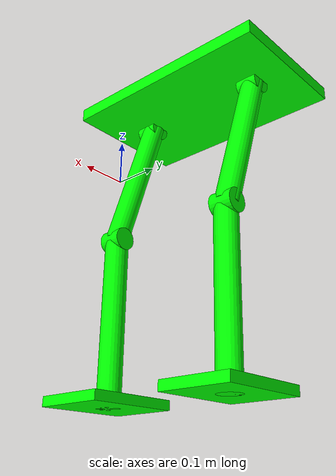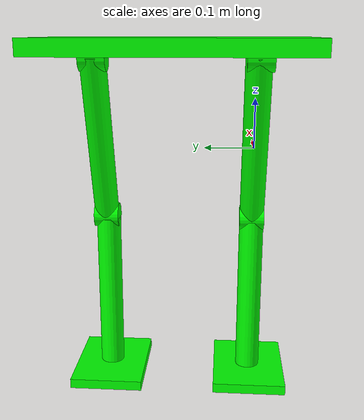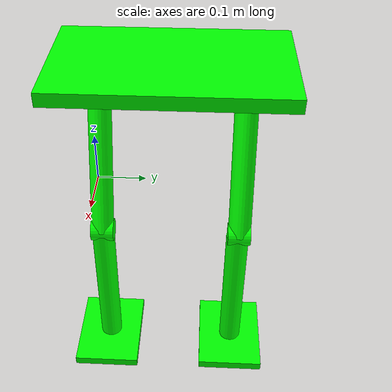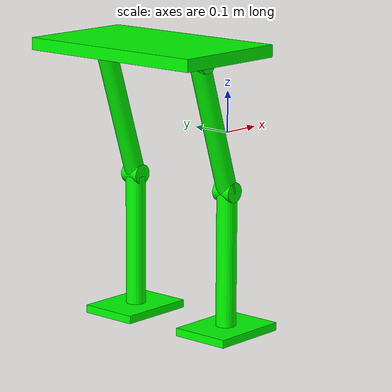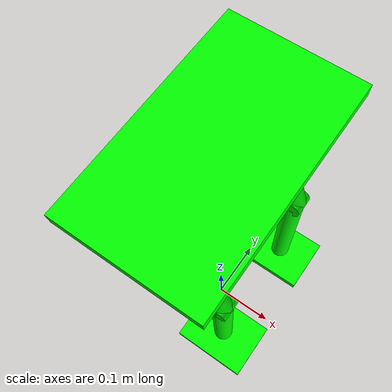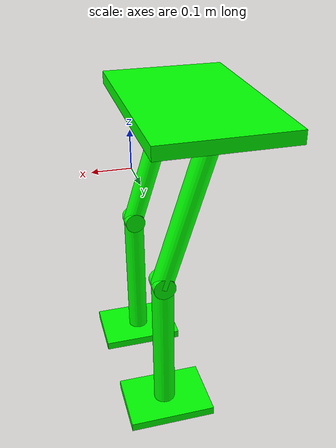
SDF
<?xml version='1.0'?>
<sdf version='1.6'>
  <model name='HumanoidRobot'>
    <link name='link'>
      <pose frame=''>0.00063 -0.001818 -0.49 0 -0 0</pose>
      <inertial>
        <mass>1</mass>
        <inertia>
          <ixx>0.166667</ixx>
          <ixy>0</ixy>
          <ixz>0</ixz>
          <iyy>0.166667</iyy>
          <iyz>0</iyz>
          <izz>0.166667</izz>
        </inertia>
        <pose frame=''>0 0 0 0 -0 0</pose>
      </inertial>
      <self_collide>0</self_collide>
      <kinematic>0</kinematic>
      <gravity>1</gravity>
      <visual name='visual'>
        <geometry>
          <box>
            <size>0.2 0.15 0.02</size>
          </box>
        </geometry>
        <material>
          <script>
            <name>Gazebo/Grey</name>
            <uri>file://media/materials/scripts/gazebo.material</uri>
          </script>
          <shader type='pixel'>
            <normal_map>__default__</normal_map>
          </shader>
          <ambient>0 1 0 0</ambient>
          <diffuse>0.7 0.7 0.7 1</diffuse>
          <specular>0.01 0.01 0.01 1</specular>
          <emissive>0 0 0 1</emissive>
        </material>
        <pose frame=''>0 0 0 0 -0 0</pose>
        <transparency>0</transparency>
        <cast_shadows>1</cast_shadows>
      </visual>
      <collision name='collision'>
        <laser_retro>0</laser_retro>
        <max_contacts>10</max_contacts>
        <pose frame=''>0 0 0 0 -0 0</pose>
        <geometry>
          <box>
            <size>0.2 0.15 0.02</size>
          </box>
        </geometry>
        <surface>
          <friction>
            <ode>
              <mu>1</mu>
              <mu2>1</mu2>
              <fdir1>0 0 0</fdir1>
              <slip1>0</slip1>
              <slip2>0</slip2>
            </ode>
            <torsional>
              <coefficient>1</coefficient>
              <patch_radius>0</patch_radius>
              <surface_radius>0</surface_radius>
              <use_patch_radius>1</use_patch_radius>
              <ode>
                <slip>0</slip>
              </ode>
            </torsional>
          </friction>
          <bounce>
            <restitution_coefficient>0</restitution_coefficient>
            <threshold>1e+06</threshold>
          </bounce>
          <contact>
            <collide_without_contact>0</collide_without_contact>
            <collide_without_contact_bitmask>1</collide_without_contact_bitmask>
            <collide_bitmask>1</collide_bitmask>
            <ode>
              <soft_cfm>0</soft_cfm>
              <soft_erp>0.2</soft_erp>
              <kp>1e+13</kp>
              <kd>1</kd>
              <max_vel>0.01</max_vel>
              <min_depth>0</min_depth>
            </ode>
            <bullet>
              <split_impulse>1</split_impulse>
              <split_impulse_penetration_threshold>-0.01</split_impulse_penetration_threshold>
              <soft_cfm>0</soft_cfm>
              <soft_erp>0.2</soft_erp>
              <kp>1e+13</kp>
              <kd>1</kd>
            </bullet>
          </contact>
        </surface>
      </collision>
    </link>
    <link name='link_0'>
      <pose frame=''>0 0 -0.325 0 -0 0</pose>
      <inertial>
        <mass>1</mass>
        <inertia>
          <ixx>0.145833</ixx>
          <ixy>0</ixy>
          <ixz>0</ixz>
          <iyy>0.145833</iyy>
          <iyz>0</iyz>
          <izz>0.125</izz>
        </inertia>
        <pose frame=''>0 0 0 0 -0 0</pose>
      </inertial>
      <gravity>1</gravity>
      <self_collide>0</self_collide>
      <kinematic>0</kinematic>
      <visual name='visual'>
        <pose frame=''>0 0 0 0 -0 0</pose>
        <geometry>
          <cylinder>
            <radius>0.025</radius>
            <length>0.35</length>
          </cylinder>
        </geometry>
        <material>
          <lighting>1</lighting>
          <script>
            <uri>file://media/materials/scripts/gazebo.material</uri>
            <name>Gazebo/Grey</name>
          </script>
          <shader type='pixel'>
            <normal_map>__default__</normal_map>
          </shader>
          <ambient>0 1 0 0</ambient>
          <diffuse>0.7 0.7 0.7 1</diffuse>
          <specular>0.01 0.01 0.01 1</specular>
          <emissive>0 0 0 1</emissive>
        </material>
        <transparency>0</transparency>
        <cast_shadows>1</cast_shadows>
      </visual>
      <collision name='collision'>
        <laser_retro>0</laser_retro>
        <max_contacts>10</max_contacts>
        <pose frame=''>0 0 0 0 -0 0</pose>
        <geometry>
          <cylinder>
            <radius>0.025</radius>
            <length>0.35</length>
          </cylinder>
        </geometry>
        <surface>
          <friction>
            <ode>
              <mu>1</mu>
              <mu2>1</mu2>
              <fdir1>0 0 0</fdir1>
              <slip1>0</slip1>
              <slip2>0</slip2>
            </ode>
            <torsional>
              <coefficient>1</coefficient>
              <patch_radius>0</patch_radius>
              <surface_radius>0</surface_radius>
              <use_patch_radius>1</use_patch_radius>
              <ode>
                <slip>0</slip>
              </ode>
            </torsional>
          </friction>
          <bounce>
            <restitution_coefficient>0</restitution_coefficient>
            <threshold>1e+06</threshold>
          </bounce>
          <contact>
            <collide_without_contact>0</collide_without_contact>
            <collide_without_contact_bitmask>1</collide_without_contact_bitmask>
            <collide_bitmask>1</collide_bitmask>
            <ode>
              <soft_cfm>0</soft_cfm>
              <soft_erp>0.2</soft_erp>
              <kp>1e+13</kp>
              <kd>1</kd>
              <max_vel>0.01</max_vel>
              <min_depth>0</min_depth>
            </ode>
            <bullet>
              <split_impulse>1</split_impulse>
              <split_impulse_penetration_threshold>-0.01</split_impulse_penetration_threshold>
              <soft_cfm>0</soft_cfm>
              <soft_erp>0.2</soft_erp>
              <kp>1e+13</kp>
              <kd>1</kd>
            </bullet>
          </contact>
        </surface>
      </collision>
    </link>
    <link name='link_0_clone'>
      <pose frame=''>-0.051999 -0.00033 0.020433 0 -0.308136 0</pose>
      <inertial>
        <mass>1</mass>
        <inertia>
          <ixx>0.145833</ixx>
          <ixy>0</ixy>
          <ixz>0</ixz>
          <iyy>0.145833</iyy>
          <iyz>0</iyz>
          <izz>0.125</izz>
        </inertia>
        <pose frame=''>0 0 0 0 -0 0</pose>
      </inertial>
      <self_collide>0</self_collide>
      <kinematic>0</kinematic>
      <gravity>1</gravity>
      <visual name='visual'>
        <pose frame=''>0 0 0 0 -0 0</pose>
        <geometry>
          <cylinder>
            <radius>0.025</radius>
            <length>0.35</length>
          </cylinder>
        </geometry>
        <material>
          <lighting>1</lighting>
          <script>
            <uri>file://media/materials/scripts/gazebo.material</uri>
            <name>Gazebo/Grey</name>
          </script>
          <shader type='pixel'>
            <normal_map>__default__</normal_map>
          </shader>
          <ambient>0 1 0 0</ambient>
          <diffuse>0.7 0.7 0.7 1</diffuse>
          <specular>0.01 0.01 0.01 1</specular>
          <emissive>0 0 0 1</emissive>
        </material>
        <transparency>0</transparency>
        <cast_shadows>1</cast_shadows>
      </visual>
      <collision name='collision'>
        <laser_retro>0</laser_retro>
        <max_contacts>10</max_contacts>
        <pose frame=''>0 0 0 0 -0 0</pose>
        <geometry>
          <cylinder>
            <radius>0.025</radius>
            <length>0.35</length>
          </cylinder>
        </geometry>
        <surface>
          <friction>
            <ode>
              <mu>1</mu>
              <mu2>1</mu2>
              <fdir1>0 0 0</fdir1>
              <slip1>0</slip1>
              <slip2>0</slip2>
            </ode>
            <torsional>
              <coefficient>1</coefficient>
              <patch_radius>0</patch_radius>
              <surface_radius>0</surface_radius>
              <use_patch_radius>1</use_patch_radius>
              <ode>
                <slip>0</slip>
              </ode>
            </torsional>
          </friction>
          <bounce>
            <restitution_coefficient>0</restitution_coefficient>
            <threshold>1e+06</threshold>
          </bounce>
          <contact>
            <collide_without_contact>0</collide_without_contact>
            <collide_without_contact_bitmask>1</collide_without_contact_bitmask>
            <collide_bitmask>1</collide_bitmask>
            <ode>
              <soft_cfm>0</soft_cfm>
              <soft_erp>0.2</soft_erp>
              <kp>1e+13</kp>
              <kd>1</kd>
              <max_vel>0.01</max_vel>
              <min_depth>0</min_depth>
            </ode>
            <bullet>
              <split_impulse>1</split_impulse>
              <split_impulse_penetration_threshold>-0.01</split_impulse_penetration_threshold>
              <soft_cfm>0</soft_cfm>
              <soft_erp>0.2</soft_erp>
              <kp>1e+13</kp>
              <kd>1</kd>
            </bullet>
          </contact>
        </surface>
      </collision>
    </link>
    <link name='link_0_clone_0'>
      <pose frame=''>0 0.3 -0.325 0 -0 0</pose>
      <inertial>
        <mass>1</mass>
        <inertia>
          <ixx>0.145833</ixx>
          <ixy>0</ixy>
          <ixz>0</ixz>
          <iyy>0.145833</iyy>
          <iyz>0</iyz>
          <izz>0.125</izz>
        </inertia>
        <pose frame=''>0 0 0 0 -0 0</pose>
      </inertial>
      <self_collide>0</self_collide>
      <kinematic>0</kinematic>
      <gravity>1</gravity>
      <visual name='visual'>
        <pose frame=''>0 0 0 0 -0 0</pose>
        <geometry>
          <cylinder>
            <radius>0.025</radius>
            <length>0.35</length>
          </cylinder>
        </geometry>
        <material>
          <lighting>1</lighting>
          <script>
            <uri>file://media/materials/scripts/gazebo.material</uri>
            <name>Gazebo/Grey</name>
          </script>
          <shader type='pixel'>
            <normal_map>__default__</normal_map>
          </shader>
          <ambient>0 1 0 0</ambient>
          <diffuse>0.7 0.7 0.7 1</diffuse>
          <specular>0.01 0.01 0.01 1</specular>
          <emissive>0 0 0 1</emissive>
        </material>
        <transparency>0</transparency>
        <cast_shadows>1</cast_shadows>
      </visual>
      <collision name='collision'>
        <laser_retro>0</laser_retro>
        <max_contacts>10</max_contacts>
        <pose frame=''>0 0 0 0 -0 0</pose>
        <geometry>
          <cylinder>
            <radius>0.025</radius>
            <length>0.35</length>
          </cylinder>
        </geometry>
        <surface>
          <friction>
            <ode>
              <mu>1</mu>
              <mu2>1</mu2>
              <fdir1>0 0 0</fdir1>
              <slip1>0</slip1>
              <slip2>0</slip2>
            </ode>
            <torsional>
              <coefficient>1</coefficient>
              <patch_radius>0</patch_radius>
              <surface_radius>0</surface_radius>
              <use_patch_radius>1</use_patch_radius>
              <ode>
                <slip>0</slip>
              </ode>
            </torsional>
          </friction>
          <bounce>
            <restitution_coefficient>0</restitution_coefficient>
            <threshold>1e+06</threshold>
          </bounce>
          <contact>
            <collide_without_contact>0</collide_without_contact>
            <collide_without_contact_bitmask>1</collide_without_contact_bitmask>
            <collide_bitmask>1</collide_bitmask>
            <ode>
              <soft_cfm>0</soft_cfm>
              <soft_erp>0.2</soft_erp>
              <kp>1e+13</kp>
              <kd>1</kd>
              <max_vel>0.01</max_vel>
              <min_depth>0</min_depth>
            </ode>
            <bullet>
              <split_impulse>1</split_impulse>
              <split_impulse_penetration_threshold>-0.01</split_impulse_penetration_threshold>
              <soft_cfm>0</soft_cfm>
              <soft_erp>0.2</soft_erp>
              <kp>1e+13</kp>
              <kd>1</kd>
            </bullet>
          </contact>
        </surface>
      </collision>
    </link>
    <link name='link_0_clone_clone'>
      <pose frame=''>-0.050474 0.303246 0.020079 0 -0.308136 0</pose>
      <inertial>
        <mass>1</mass>
        <inertia>
          <ixx>0.145833</ixx>
          <ixy>0</ixy>
          <ixz>0</ixz>
          <iyy>0.145833</iyy>
          <iyz>0</iyz>
          <izz>0.125</izz>
        </inertia>
        <pose frame=''>0 0 0 0 -0 0</pose>
      </inertial>
      <self_collide>0</self_collide>
      <kinematic>0</kinematic>
      <gravity>1</gravity>
      <visual name='visual'>
        <pose frame=''>0 0 0 0 -0 0</pose>
        <geometry>
          <cylinder>
            <radius>0.025</radius>
            <length>0.35</length>
          </cylinder>
        </geometry>
        <material>
          <lighting>1</lighting>
          <script>
            <uri>file://media/materials/scripts/gazebo.material</uri>
            <name>Gazebo/Grey</name>
          </script>
          <shader type='pixel'>
            <normal_map>__default__</normal_map>
          </shader>
          <ambient>0 1 0 0</ambient>
          <diffuse>0.7 0.7 0.7 1</diffuse>
          <specular>0.01 0.01 0.01 1</specular>
          <emissive>0 0 0 1</emissive>
        </material>
        <transparency>0</transparency>
        <cast_shadows>1</cast_shadows>
      </visual>
      <collision name='collision'>
        <laser_retro>0</laser_retro>
        <max_contacts>10</max_contacts>
        <pose frame=''>0 0 0 0 -0 0</pose>
        <geometry>
          <cylinder>
            <radius>0.025</radius>
            <length>0.35</length>
          </cylinder>
        </geometry>
        <surface>
          <friction>
            <ode>
              <mu>1</mu>
              <mu2>1</mu2>
              <fdir1>0 0 0</fdir1>
              <slip1>0</slip1>
              <slip2>0</slip2>
            </ode>
            <torsional>
              <coefficient>1</coefficient>
              <patch_radius>0</patch_radius>
              <surface_radius>0</surface_radius>
              <use_patch_radius>1</use_patch_radius>
              <ode>
                <slip>0</slip>
              </ode>
            </torsional>
          </friction>
          <bounce>
            <restitution_coefficient>0</restitution_coefficient>
            <threshold>1e+06</threshold>
          </bounce>
          <contact>
            <collide_without_contact>0</collide_without_contact>
            <collide_without_contact_bitmask>1</collide_without_contact_bitmask>
            <collide_bitmask>1</collide_bitmask>
            <ode>
              <soft_cfm>0</soft_cfm>
              <soft_erp>0.2</soft_erp>
              <kp>1e+13</kp>
              <kd>1</kd>
              <max_vel>0.01</max_vel>
              <min_depth>0</min_depth>
            </ode>
            <bullet>
              <split_impulse>1</split_impulse>
              <split_impulse_penetration_threshold>-0.01</split_impulse_penetration_threshold>
              <soft_cfm>0</soft_cfm>
              <soft_erp>0.2</soft_erp>
              <kp>1e+13</kp>
              <kd>1</kd>
            </bullet>
          </contact>
        </surface>
      </collision>
    </link>
    <link name='link_1'>
      <pose frame=''>0 0 -0.145 1.5707 -0 0</pose>
      <inertial>
        <mass>1</mass>
        <inertia>
          <ixx>0.145833</ixx>
          <ixy>0</ixy>
          <ixz>0</ixz>
          <iyy>0.145833</iyy>
          <iyz>0</iyz>
          <izz>0.125</izz>
        </inertia>
        <pose frame=''>0 0 0 0 -0 0</pose>
      </inertial>
      <gravity>1</gravity>
      <self_collide>0</self_collide>
      <kinematic>0</kinematic>
      <visual name='visual'>
        <pose frame=''>0 0 0 0 -0 0</pose>
        <geometry>
          <cylinder>
            <radius>0.025</radius>
            <length>0.05</length>
          </cylinder>
        </geometry>
        <material>
          <lighting>1</lighting>
          <script>
            <uri>file://media/materials/scripts/gazebo.material</uri>
            <name>Gazebo/Grey</name>
          </script>
          <shader type='pixel'>
            <normal_map>__default__</normal_map>
          </shader>
          <ambient>0 1 0 0</ambient>
          <diffuse>0.7 0.7 0.7 1</diffuse>
          <specular>0.01 0.01 0.01 1</specular>
          <emissive>0 0 0 1</emissive>
        </material>
        <transparency>0</transparency>
        <cast_shadows>1</cast_shadows>
      </visual>
      <collision name='collision'>
        <laser_retro>0</laser_retro>
        <max_contacts>10</max_contacts>
        <pose frame=''>0 0 0 0 -0 0</pose>
        <geometry>
          <cylinder>
            <radius>0.025</radius>
            <length>0.05</length>
          </cylinder>
        </geometry>
        <surface>
          <friction>
            <ode>
              <mu>1</mu>
              <mu2>1</mu2>
              <fdir1>0 0 0</fdir1>
              <slip1>0</slip1>
              <slip2>0</slip2>
            </ode>
            <torsional>
              <coefficient>1</coefficient>
              <patch_radius>0</patch_radius>
              <surface_radius>0</surface_radius>
              <use_patch_radius>1</use_patch_radius>
              <ode>
                <slip>0</slip>
              </ode>
            </torsional>
          </friction>
          <bounce>
            <restitution_coefficient>0</restitution_coefficient>
            <threshold>1e+06</threshold>
          </bounce>
          <contact>
            <collide_without_contact>0</collide_without_contact>
            <collide_without_contact_bitmask>1</collide_without_contact_bitmask>
            <collide_bitmask>1</collide_bitmask>
            <ode>
              <soft_cfm>0</soft_cfm>
              <soft_erp>0.2</soft_erp>
              <kp>1e+13</kp>
              <kd>1</kd>
              <max_vel>0.01</max_vel>
              <min_depth>0</min_depth>
            </ode>
            <bullet>
              <split_impulse>1</split_impulse>
              <split_impulse_penetration_threshold>-0.01</split_impulse_penetration_threshold>
              <soft_cfm>0</soft_cfm>
              <soft_erp>0.2</soft_erp>
              <kp>1e+13</kp>
              <kd>1</kd>
            </bullet>
          </contact>
        </surface>
      </collision>
    </link>
    <link name='link_1_clone'>
      <pose frame=''>-0.103509 -0.003298 0.181065 1.5707 -0 0</pose>
      <inertial>
        <mass>1</mass>
        <inertia>
          <ixx>0.145833</ixx>
          <ixy>0</ixy>
          <ixz>0</ixz>
          <iyy>0.145833</iyy>
          <iyz>0</iyz>
          <izz>0.125</izz>
        </inertia>
        <pose frame=''>0 0 0 0 -0 0</pose>
      </inertial>
      <self_collide>0</self_collide>
      <kinematic>0</kinematic>
      <gravity>1</gravity>
      <visual name='visual'>
        <pose frame=''>0 0 0 0 -0 0</pose>
        <geometry>
          <cylinder>
            <radius>0.025</radius>
            <length>0.05</length>
          </cylinder>
        </geometry>
        <material>
          <lighting>1</lighting>
          <script>
            <uri>file://media/materials/scripts/gazebo.material</uri>
            <name>Gazebo/Grey</name>
          </script>
          <shader type='pixel'>
            <normal_map>__default__</normal_map>
          </shader>
          <ambient>0 1 0 0</ambient>
          <diffuse>0.7 0.7 0.7 1</diffuse>
          <specular>0.01 0.01 0.01 1</specular>
          <emissive>0 0 0 1</emissive>
        </material>
        <transparency>0</transparency>
        <cast_shadows>1</cast_shadows>
      </visual>
      <collision name='collision'>
        <laser_retro>0</laser_retro>
        <max_contacts>10</max_contacts>
        <pose frame=''>0 0 0 0 -0 0</pose>
        <geometry>
          <cylinder>
            <radius>0.025</radius>
            <length>0.05</length>
          </cylinder>
        </geometry>
        <surface>
          <friction>
            <ode>
              <mu>1</mu>
              <mu2>1</mu2>
              <fdir1>0 0 0</fdir1>
              <slip1>0</slip1>
              <slip2>0</slip2>
            </ode>
            <torsional>
              <coefficient>1</coefficient>
              <patch_radius>0</patch_radius>
              <surface_radius>0</surface_radius>
              <use_patch_radius>1</use_patch_radius>
              <ode>
                <slip>0</slip>
              </ode>
            </torsional>
          </friction>
          <bounce>
            <restitution_coefficient>0</restitution_coefficient>
            <threshold>1e+06</threshold>
          </bounce>
          <contact>
            <collide_without_contact>0</collide_without_contact>
            <collide_without_contact_bitmask>1</collide_without_contact_bitmask>
            <collide_bitmask>1</collide_bitmask>
            <ode>
              <soft_cfm>0</soft_cfm>
              <soft_erp>0.2</soft_erp>
              <kp>1e+13</kp>
              <kd>1</kd>
              <max_vel>0.01</max_vel>
              <min_depth>0</min_depth>
            </ode>
            <bullet>
              <split_impulse>1</split_impulse>
              <split_impulse_penetration_threshold>-0.01</split_impulse_penetration_threshold>
              <soft_cfm>0</soft_cfm>
              <soft_erp>0.2</soft_erp>
              <kp>1e+13</kp>
              <kd>1</kd>
            </bullet>
          </contact>
        </surface>
      </collision>
    </link>
    <link name='link_1_clone_0'>
      <pose frame=''>0.000939 0.302493 -0.145 1.5707 -0 0</pose>
      <inertial>
        <mass>1</mass>
        <inertia>
          <ixx>0.145833</ixx>
          <ixy>0</ixy>
          <ixz>0</ixz>
          <iyy>0.145833</iyy>
          <iyz>0</iyz>
          <izz>0.125</izz>
        </inertia>
        <pose frame=''>0 0 0 0 -0 0</pose>
      </inertial>
      <self_collide>0</self_collide>
      <kinematic>0</kinematic>
      <gravity>1</gravity>
      <visual name='visual'>
        <pose frame=''>0 0 0 0 -0 0</pose>
        <geometry>
          <cylinder>
            <radius>0.025</radius>
            <length>0.05</length>
          </cylinder>
        </geometry>
        <material>
          <lighting>1</lighting>
          <script>
            <uri>file://media/materials/scripts/gazebo.material</uri>
            <name>Gazebo/Grey</name>
          </script>
          <shader type='pixel'>
            <normal_map>__default__</normal_map>
          </shader>
          <ambient>0 1 0 0</ambient>
          <diffuse>0.7 0.7 0.7 1</diffuse>
          <specular>0.01 0.01 0.01 1</specular>
          <emissive>0 0 0 1</emissive>
        </material>
        <transparency>0</transparency>
        <cast_shadows>1</cast_shadows>
      </visual>
      <collision name='collision'>
        <laser_retro>0</laser_retro>
        <max_contacts>10</max_contacts>
        <pose frame=''>0 0 0 0 -0 0</pose>
        <geometry>
          <cylinder>
            <radius>0.025</radius>
            <length>0.05</length>
          </cylinder>
        </geometry>
        <surface>
          <friction>
            <ode>
              <mu>1</mu>
              <mu2>1</mu2>
              <fdir1>0 0 0</fdir1>
              <slip1>0</slip1>
              <slip2>0</slip2>
            </ode>
            <torsional>
              <coefficient>1</coefficient>
              <patch_radius>0</patch_radius>
              <surface_radius>0</surface_radius>
              <use_patch_radius>1</use_patch_radius>
              <ode>
                <slip>0</slip>
              </ode>
            </torsional>
          </friction>
          <bounce>
            <restitution_coefficient>0</restitution_coefficient>
            <threshold>1e+06</threshold>
          </bounce>
          <contact>
            <collide_without_contact>0</collide_without_contact>
            <collide_without_contact_bitmask>1</collide_without_contact_bitmask>
            <collide_bitmask>1</collide_bitmask>
            <ode>
              <soft_cfm>0</soft_cfm>
              <soft_erp>0.2</soft_erp>
              <kp>1e+13</kp>
              <kd>1</kd>
              <max_vel>0.01</max_vel>
              <min_depth>0</min_depth>
            </ode>
            <bullet>
              <split_impulse>1</split_impulse>
              <split_impulse_penetration_threshold>-0.01</split_impulse_penetration_threshold>
              <soft_cfm>0</soft_cfm>
              <soft_erp>0.2</soft_erp>
              <kp>1e+13</kp>
              <kd>1</kd>
            </bullet>
          </contact>
        </surface>
      </collision>
    </link>
    <link name='link_1_clone_clone'>
      <pose frame=''>-0.100587 0.302363 0.181067 1.5707 -0 0</pose>
      <inertial>
        <mass>1</mass>
        <inertia>
          <ixx>0.145833</ixx>
          <ixy>0</ixy>
          <ixz>0</ixz>
          <iyy>0.145833</iyy>
          <iyz>0</iyz>
          <izz>0.125</izz>
        </inertia>
        <pose frame=''>0 0 0 0 -0 0</pose>
      </inertial>
      <self_collide>0</self_collide>
      <kinematic>0</kinematic>
      <gravity>1</gravity>
      <visual name='visual'>
        <pose frame=''>0 0 0 0 -0 0</pose>
        <geometry>
          <cylinder>
            <radius>0.025</radius>
            <length>0.05</length>
          </cylinder>
        </geometry>
        <material>
          <lighting>1</lighting>
          <script>
            <uri>file://media/materials/scripts/gazebo.material</uri>
            <name>Gazebo/Grey</name>
          </script>
          <shader type='pixel'>
            <normal_map>__default__</normal_map>
          </shader>
          <ambient>0 1 0 0</ambient>
          <diffuse>0.7 0.7 0.7 1</diffuse>
          <specular>0.01 0.01 0.01 1</specular>
          <emissive>0 0 0 1</emissive>
        </material>
        <transparency>0</transparency>
        <cast_shadows>1</cast_shadows>
      </visual>
      <collision name='collision'>
        <laser_retro>0</laser_retro>
        <max_contacts>10</max_contacts>
        <pose frame=''>0 0 0 0 -0 0</pose>
        <geometry>
          <cylinder>
            <radius>0.025</radius>
            <length>0.05</length>
          </cylinder>
        </geometry>
        <surface>
          <friction>
            <ode>
              <mu>1</mu>
              <mu2>1</mu2>
              <fdir1>0 0 0</fdir1>
              <slip1>0</slip1>
              <slip2>0</slip2>
            </ode>
            <torsional>
              <coefficient>1</coefficient>
              <patch_radius>0</patch_radius>
              <surface_radius>0</surface_radius>
              <use_patch_radius>1</use_patch_radius>
              <ode>
                <slip>0</slip>
              </ode>
            </torsional>
          </friction>
          <bounce>
            <restitution_coefficient>0</restitution_coefficient>
            <threshold>1e+06</threshold>
          </bounce>
          <contact>
            <collide_without_contact>0</collide_without_contact>
            <collide_without_contact_bitmask>1</collide_without_contact_bitmask>
            <collide_bitmask>1</collide_bitmask>
            <ode>
              <soft_cfm>0</soft_cfm>
              <soft_erp>0.2</soft_erp>
              <kp>1e+13</kp>
              <kd>1</kd>
              <max_vel>0.01</max_vel>
              <min_depth>0</min_depth>
            </ode>
            <bullet>
              <split_impulse>1</split_impulse>
              <split_impulse_penetration_threshold>-0.01</split_impulse_penetration_threshold>
              <soft_cfm>0</soft_cfm>
              <soft_erp>0.2</soft_erp>
              <kp>1e+13</kp>
              <kd>1</kd>
            </bullet>
          </contact>
        </surface>
      </collision>
    </link>
    <link name='link_2'>
      <pose frame=''>-0.108781 0.148598 0.2021 0 -0 0</pose>
      <inertial>
        <mass>1</mass>
        <inertia>
          <ixx>0.166667</ixx>
          <ixy>0</ixy>
          <ixz>0</ixz>
          <iyy>0.166667</iyy>
          <iyz>0</iyz>
          <izz>0.166667</izz>
        </inertia>
        <pose frame=''>0 0 0 0 -0 0</pose>
      </inertial>
      <gravity>1</gravity>
      <self_collide>0</self_collide>
      <kinematic>0</kinematic>
      <visual name='visual'>
        <pose frame=''>0 0 0 0 -0 0</pose>
        <geometry>
          <box>
            <size>0.3 0.5 0.03</size>
          </box>
        </geometry>
        <material>
          <lighting>1</lighting>
          <script>
            <uri>file://media/materials/scripts/gazebo.material</uri>
            <name>Gazebo/Grey</name>
          </script>
          <shader type='pixel'>
            <normal_map>__default__</normal_map>
          </shader>
          <ambient>0 1 0 0</ambient>
          <diffuse>0.7 0.7 0.7 1</diffuse>
          <specular>0.01 0.01 0.01 1</specular>
          <emissive>0 0 0 1</emissive>
        </material>
        <transparency>0</transparency>
        <cast_shadows>1</cast_shadows>
      </visual>
      <collision name='collision'>
        <laser_retro>0</laser_retro>
        <max_contacts>10</max_contacts>
        <pose frame=''>0 0 0 0 -0 0</pose>
        <geometry>
          <box>
            <size>0.3 0.5 0.03</size>
          </box>
        </geometry>
        <surface>
          <friction>
            <ode>
              <mu>1</mu>
              <mu2>1</mu2>
              <fdir1>0 0 0</fdir1>
              <slip1>0</slip1>
              <slip2>0</slip2>
            </ode>
            <torsional>
              <coefficient>1</coefficient>
              <patch_radius>0</patch_radius>
              <surface_radius>0</surface_radius>
              <use_patch_radius>1</use_patch_radius>
              <ode>
                <slip>0</slip>
              </ode>
            </torsional>
          </friction>
          <bounce>
            <restitution_coefficient>0</restitution_coefficient>
            <threshold>1e+06</threshold>
          </bounce>
          <contact>
            <collide_without_contact>0</collide_without_contact>
            <collide_without_contact_bitmask>1</collide_without_contact_bitmask>
            <collide_bitmask>1</collide_bitmask>
            <ode>
              <soft_cfm>0</soft_cfm>
              <soft_erp>0.2</soft_erp>
              <kp>1e+13</kp>
              <kd>1</kd>
              <max_vel>0.01</max_vel>
              <min_depth>0</min_depth>
            </ode>
            <bullet>
              <split_impulse>1</split_impulse>
              <split_impulse_penetration_threshold>-0.01</split_impulse_penetration_threshold>
              <soft_cfm>0</soft_cfm>
              <soft_erp>0.2</soft_erp>
              <kp>1e+13</kp>
              <kd>1</kd>
            </bullet>
          </contact>
        </surface>
      </collision>
    </link>
    <link name='link_clone'>
      <pose frame=''>-0.003432 0.299188 -0.49 0 -0 0</pose>
      <inertial>
        <mass>1</mass>
        <inertia>
          <ixx>0.166667</ixx>
          <ixy>0</ixy>
          <ixz>0</ixz>
          <iyy>0.166667</iyy>
          <iyz>0</iyz>
          <izz>0.166667</izz>
        </inertia>
        <pose frame=''>0 0 0 0 -0 0</pose>
      </inertial>
      <self_collide>0</self_collide>
      <kinematic>0</kinematic>
      <gravity>1</gravity>
      <visual name='visual'>
        <geometry>
          <box>
            <size>0.2 0.15 0.02</size>
          </box>
        </geometry>
        <material>
          <script>
            <name>Gazebo/Grey</name>
            <uri>file://media/materials/scripts/gazebo.material</uri>
          </script>
          <shader type='pixel'>
            <normal_map>__default__</normal_map>
          </shader>
          <ambient>0 1 0 0</ambient>
          <diffuse>0.7 0.7 0.7 1</diffuse>
          <specular>0.01 0.01 0.01 1</specular>
          <emissive>0 0 0 1</emissive>
        </material>
        <pose frame=''>0 0 0 0 -0 0</pose>
        <transparency>0</transparency>
        <cast_shadows>1</cast_shadows>
      </visual>
      <collision name='collision'>
        <laser_retro>0</laser_retro>
        <max_contacts>10</max_contacts>
        <pose frame=''>0 0 0 0 -0 0</pose>
        <geometry>
          <box>
            <size>0.2 0.15 0.02</size>
          </box>
        </geometry>
        <surface>
          <friction>
            <ode>
              <mu>1</mu>
              <mu2>1</mu2>
              <fdir1>0 0 0</fdir1>
              <slip1>0</slip1>
              <slip2>0</slip2>
            </ode>
            <torsional>
              <coefficient>1</coefficient>
              <patch_radius>0</patch_radius>
              <surface_radius>0</surface_radius>
              <use_patch_radius>1</use_patch_radius>
              <ode>
                <slip>0</slip>
              </ode>
            </torsional>
          </friction>
          <bounce>
            <restitution_coefficient>0</restitution_coefficient>
            <threshold>1e+06</threshold>
          </bounce>
          <contact>
            <collide_without_contact>0</collide_without_contact>
            <collide_without_contact_bitmask>1</collide_without_contact_bitmask>
            <collide_bitmask>1</collide_bitmask>
            <ode>
              <soft_cfm>0</soft_cfm>
              <soft_erp>0.2</soft_erp>
              <kp>1e+13</kp>
              <kd>1</kd>
              <max_vel>0.01</max_vel>
              <min_depth>0</min_depth>
            </ode>
            <bullet>
              <split_impulse>1</split_impulse>
              <split_impulse_penetration_threshold>-0.01</split_impulse_penetration_threshold>
              <soft_cfm>0</soft_cfm>
              <soft_erp>0.2</soft_erp>
              <kp>1e+13</kp>
              <kd>1</kd>
            </bullet>
          </contact>
        </surface>
      </collision>
    </link>
    <joint name='link_0_JOINT_2' type='revolute'>
      <parent>link_0</parent>
      <child>link</child>
      <pose frame=''>0 0 0 0 -0 0</pose>
      <axis>
        <xyz>1 0 0</xyz>
        <use_parent_model_frame>0</use_parent_model_frame>
        <limit>
          <lower>-1.79769e+308</lower>
          <upper>1.79769e+308</upper>
          <effort>-1</effort>
          <velocity>-1</velocity>
        </limit>
        <dynamics>
          <spring_reference>0</spring_reference>
          <spring_stiffness>0</spring_stiffness>
          <damping>0</damping>
          <friction>0</friction>
        </dynamics>
      </axis>
      <physics>
        <ode>
          <limit>
            <cfm>0</cfm>
            <erp>0.2</erp>
          </limit>
          <suspension>
            <cfm>0</cfm>
            <erp>0.2</erp>
          </suspension>
        </ode>
      </physics>
    </joint>
    <joint name='link_0_JOINT_3' type='revolute'>
      <parent>link_0</parent>
      <child>link_1</child>
      <pose frame=''>0 0 0 0 -0 0</pose>
      <axis>
        <xyz>1 0 0</xyz>
        <use_parent_model_frame>0</use_parent_model_frame>
        <limit>
          <lower>-1.79769e+308</lower>
          <upper>1.79769e+308</upper>
          <effort>-1</effort>
          <velocity>-1</velocity>
        </limit>
        <dynamics>
          <spring_reference>0</spring_reference>
          <spring_stiffness>0</spring_stiffness>
          <damping>0</damping>
        </dynamics>
      </axis>
      <physics>
        <ode>
          <limit>
            <cfm>0</cfm>
            <erp>0.2</erp>
          </limit>
          <suspension>
            <cfm>0</cfm>
            <erp>0.2</erp>
          </suspension>
        </ode>
      </physics>
    </joint>
    <joint name='link_0_clone_0_JOINT_6' type='fixed'>
      <parent>link_0_clone_0</parent>
      <child>link_clone</child>
      <pose frame=''>0 0 0 0 -0 0</pose>
      <physics>
        <ode>
          <limit>
            <cfm>0</cfm>
            <erp>0.2</erp>
          </limit>
          <suspension>
            <cfm>0</cfm>
            <erp>0.2</erp>
          </suspension>
        </ode>
      </physics>
    </joint>
    <joint name='link_0_clone_JOINT_4' type='revolute'>
      <parent>link_0_clone</parent>
      <child>link_1</child>
      <pose frame=''>0 0 0 0 -0 0</pose>
      <axis>
        <xyz>1 0 0</xyz>
        <use_parent_model_frame>0</use_parent_model_frame>
        <limit>
          <lower>-1.79769e+308</lower>
          <upper>1.79769e+308</upper>
          <effort>-1</effort>
          <velocity>-1</velocity>
        </limit>
        <dynamics>
          <spring_reference>0</spring_reference>
          <spring_stiffness>0</spring_stiffness>
          <damping>0</damping>
        </dynamics>
      </axis>
      <physics>
        <ode>
          <limit>
            <cfm>0</cfm>
            <erp>0.2</erp>
          </limit>
          <suspension>
            <cfm>0</cfm>
            <erp>0.2</erp>
          </suspension>
        </ode>
      </physics>
    </joint>
    <joint name='link_0_clone_JOINT_5' type='revolute'>
      <parent>link_0_clone</parent>
      <child>link_1_clone</child>
      <pose frame=''>0 0 0 0 -0 0</pose>
      <axis>
        <xyz>1 0 0</xyz>
        <use_parent_model_frame>0</use_parent_model_frame>
        <limit>
          <lower>-1.79769e+308</lower>
          <upper>1.79769e+308</upper>
          <effort>-1</effort>
          <velocity>-1</velocity>
        </limit>
        <dynamics>
          <spring_reference>0</spring_reference>
          <spring_stiffness>0</spring_stiffness>
          <damping>0</damping>
        </dynamics>
      </axis>
      <physics>
        <ode>
          <limit>
            <cfm>0</cfm>
            <erp>0.2</erp>
          </limit>
          <suspension>
            <cfm>0</cfm>
            <erp>0.2</erp>
          </suspension>
        </ode>
      </physics>
    </joint>
    <joint name='link_2_JOINT_7' type='fixed'>
      <parent>link_2</parent>
      <child>link_1_clone_clone</child>
      <pose frame=''>0 0 0 0 -0 0</pose>
      <physics>
        <ode>
          <limit>
            <cfm>0</cfm>
            <erp>0.2</erp>
          </limit>
          <suspension>
            <cfm>0</cfm>
            <erp>0.2</erp>
          </suspension>
        </ode>
      </physics>
    </joint>
    <joint name='link_2_JOINT_8' type='fixed'>
      <parent>link_2</parent>
      <child>link_1_clone</child>
      <pose frame=''>0 0 0 0 -0 0</pose>
      <physics>
        <ode>
          <limit>
            <cfm>0</cfm>
            <erp>0.2</erp>
          </limit>
          <suspension>
            <cfm>0</cfm>
            <erp>0.2</erp>
          </suspension>
        </ode>
      </physics>
    </joint>
    <static>0</static>
    <allow_auto_disable>1</allow_auto_disable>
  </model>
</sdf>
